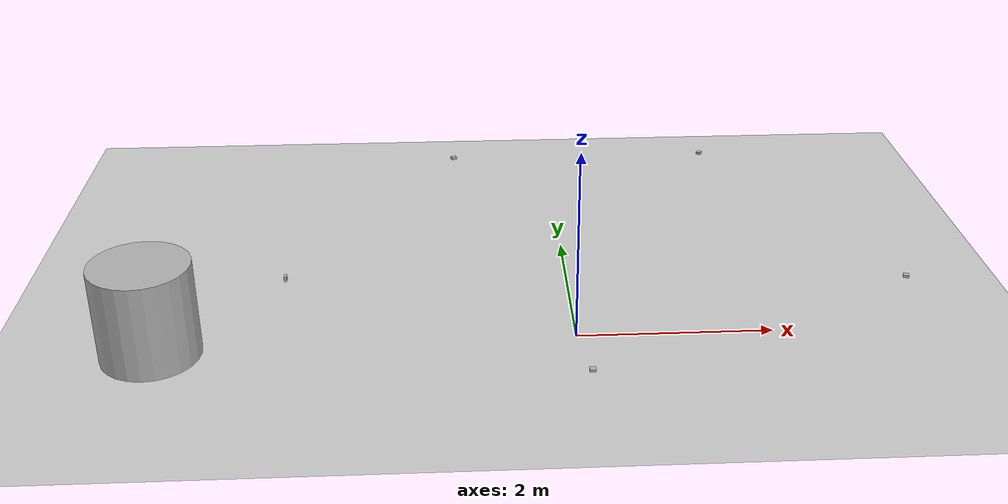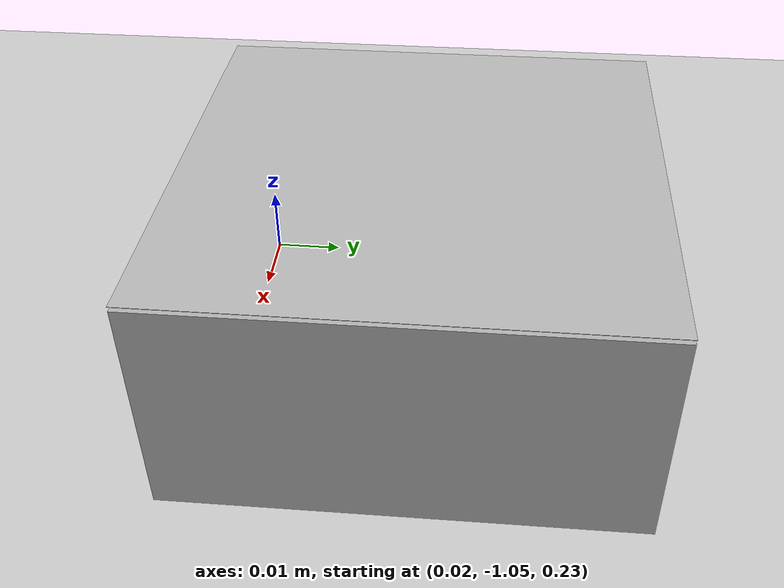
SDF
<sdf version='1.9'>
  <world name='empty'>
    <physics name='1ms' type='ignored'>
      <max_step_size>0.001</max_step_size>
      <real_time_factor>1</real_time_factor>
      <real_time_update_rate>1000</real_time_update_rate>
    </physics>
    <plugin name='gz::sim::systems::Physics' filename='gz-sim-physics-system'/>
    <plugin name='gz::sim::systems::UserCommands' filename='gz-sim-user-commands-system'/>
    <plugin name='gz::sim::systems::SceneBroadcaster' filename='gz-sim-scene-broadcaster-system'/>
    <plugin name='gz::sim::systems::Contact' filename='gz-sim-contact-system'/>
    <plugin name='gz::sim::systems::Sensors' filename='gz-sim-sensors-system'/>
    <plugin name='gz::sim::systems::Imu' filename='gz-sim-imu-system'/>
    <gravity>0 0 -9.8</gravity>
    <magnetic_field>6e-06 2.3e-05 -4.2e-05</magnetic_field>
    <atmosphere type='adiabatic'/>
    <scene>
      <ambient>0.4 0.4 0.4 1</ambient>
      <background>0.7 0.7 0.7 1</background>
      <shadows>true</shadows>
    </scene>
    <model name='ground_plane'>
      <static>true</static>
      <link name='link'>
        <collision name='collision'>
          <geometry>
            <plane>
              <normal>0 0 1</normal>
              <size>100 100</size>
            </plane>
          </geometry>
          <surface>
            <friction>
              <ode/>
            </friction>
            <bounce/>
            <contact/>
          </surface>
        </collision>
        <visual name='visual'>
          <geometry>
            <plane>
              <normal>0 0 1</normal>
              <size>100 100</size>
            </plane>
          </geometry>
          <material>
            <ambient>0.8 0.8 0.8 1</ambient>
            <diffuse>0.8 0.8 0.8 1</diffuse>
            <specular>0.8 0.8 0.8 1</specular>
          </material>
        </visual>
        <pose>0 0 0 0 -0 0</pose>
        <inertial>
          <pose>0 0 0 0 -0 0</pose>
          <mass>1</mass>
          <inertia>
            <ixx>1</ixx>
            <ixy>0</ixy>
            <ixz>0</ixz>
            <iyy>1</iyy>
            <iyz>0</iyz>
            <izz>1</izz>
          </inertia>
        </inertial>
        <enable_wind>false</enable_wind>
      </link>
      <pose>0 0 0 0 -0 3</pose>
      <self_collide>false</self_collide>
    </model>
    <model name='cylinder'>
      <pose>-4.22957 -0.133714 0.499999 0 -0 0</pose>
      <link name='cylinder_link'>
        <inertial>
          <inertia>
            <ixx>0.14580000000000001</ixx>
            <ixy>0</ixy>
            <ixz>0</ixz>
            <iyy>0.14580000000000001</iyy>
            <iyz>0</iyz>
            <izz>0.125</izz>
          </inertia>
          <mass>1</mass>
          <pose>0 0 0 0 -0 0</pose>
        </inertial>
        <collision name='cylinder_collision'>
          <geometry>
            <cylinder>
              <radius>0.5</radius>
              <length>1</length>
            </cylinder>
          </geometry>
          <surface>
            <friction>
              <ode/>
            </friction>
            <bounce/>
            <contact/>
          </surface>
        </collision>
        <visual name='cylinder_visual'>
          <geometry>
            <cylinder>
              <radius>0.5</radius>
              <length>1</length>
            </cylinder>
          </geometry>
          <material>
            <ambient>0.3 0.3 0.3 1</ambient>
            <diffuse>0.7 0.7 0.7 1</diffuse>
            <specular>1 1 1 1</specular>
          </material>
        </visual>
        <pose>0 0 0 0 -0 0</pose>
        <enable_wind>false</enable_wind>
      </link>
      <static>false</static>
      <self_collide>false</self_collide>
    </model>
    <include>
      <uri>file:///home/alessandro/Desktop/Università/Magistrale/Year2/Experimental/gazebo_models/aruco_box</uri>
      <name>aruco_box</name>
      <pose>-1.2 4 0.25 -0 -0 -1.1</pose>
    </include>
    <include>
      <uri>file:///home/alessandro/Desktop/Università/Magistrale/Year2/Experimental/gazebo_models/aruco_box</uri>
      <name>aruco_box_1</name>
      <pose>3.54921 0.62242 0.25 0 -0 -1.8</pose>
    </include>
    <include>
      <uri>file:///home/alessandro/Desktop/Università/Magistrale/Year2/Experimental/gazebo_models/aruco_box</uri>
      <name>aruco_box_2</name>
      <pose>-3.002 0.911545 0.25 -1.5708 -0 1.56726</pose>
    </include>
    <include>
      <uri>file:///home/alessandro/Desktop/Università/Magistrale/Year2/Experimental/gazebo_models/aruco_box</uri>
      <name>aruco_box_0</name>
      <pose>1.93759 4 0.25 0 -0 1</pose>
    </include>
    <include>
      <uri>file:///home/alessandro/Desktop/Università/Magistrale/Year2/Experimental/gazebo_models/aruco_box</uri>
      <name>aruco_box_3</name>
      <pose>0.04849 -1.02369 0.249999 0 -0 0</pose>
    </include>
    <light name='sun' type='directional'>
      <pose>0 0 10 0 -0 0</pose>
      <cast_shadows>true</cast_shadows>
      <intensity>1</intensity>
      <direction>-0.5 0.1 -0.9</direction>
      <diffuse>0.8 0.8 0.8 1</diffuse>
      <specular>0.2 0.2 0.2 1</specular>
      <attenuation>
        <range>1000</range>
        <linear>0.01</linear>
        <constant>0.90000000000000002</constant>
        <quadratic>0.001</quadratic>
      </attenuation>
      <spot>
        <inner_angle>0</inner_angle>
        <outer_angle>0</outer_angle>
        <falloff>0</falloff>
      </spot>
    </light>
  </world>
</sdf>

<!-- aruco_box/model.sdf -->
<sdf version="1.6">
  <model name="aruco_box">
    <static>false</static>

    <link name="link">
      <inertial>
        <mass>0.05</mass>
        <inertia>
          <ixx>1e-5</ixx><iyy>1e-5</iyy><izz>1e-5</izz>
          <ixy>0</ixy><ixz>0</ixz><iyz>0</iyz>
        </inertia>
      </inertial>

      <collision name="box_col">
        <geometry>
          <box><size>0.06 0.06 0.03</size></box>
        </geometry>
      </collision>

      <visual name="box_vis">
        <geometry>
          <box><size>0.06 0.06 0.03</size></box>
        </geometry>
        <material>
          <ambient>0.7 0.7 0.7 1</ambient>
          <diffuse>0.7 0.7 0.7 1</diffuse>
        </material>
      </visual>

      <!-- Top marker plane -->
      <visual name="marker_plane">
        <!-- box half height = 0.015, lift slightly to avoid z-fighting -->
        <pose>0 0 0.0156 0 0 0</pose>
        <geometry>
          <plane>
            <normal>0 0 1</normal>
            <size>0.06 0.06</size>
          </plane>
        </geometry>
        <material>
          <script>
            <uri>model://aruco_box/materials/scripts</uri>
            <uri>model://aruco_box/materials/textures</uri>
            <name>ArucoBox/Marker</name>
          </script>
        </material>
      </visual>

    </link>
  </model>
</sdf>
